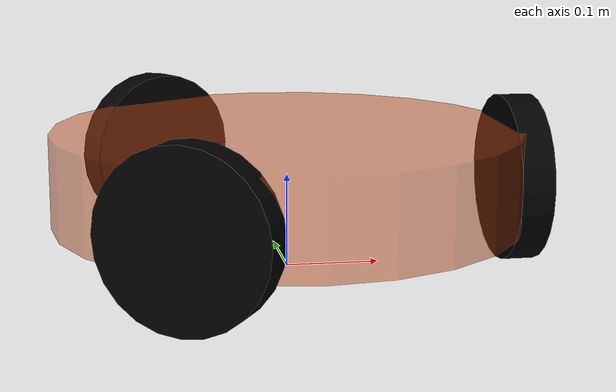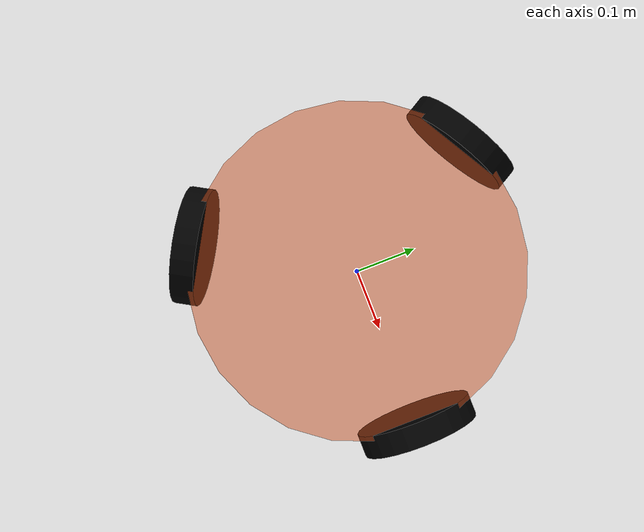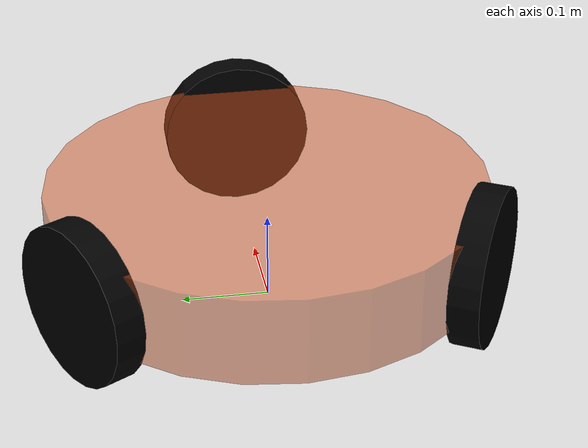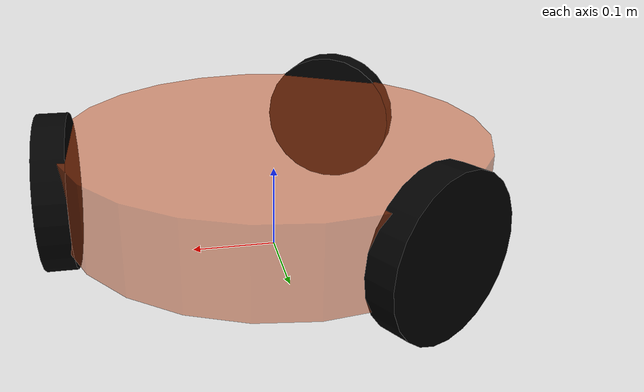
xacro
<robot name="mycar" xmlns:xacro="http://wiki.ros.org/xacro">
    <!-- 设置 base_footprint  -->
    <link name="base_footprint">
    </link>

    <!-- 添加底盘 -->
    <link name="base_link">
        <visual>
            <geometry>
                <cylinder radius="0.25" length="0.10" />
            </geometry>
            <origin xyz="0 0 0" rpy="0 0 0" />
            <material name="yellow">
                <color rgba="0.8 0.3 0.1 0.5" />
            </material>
        </visual>
    </link>

    <joint name="base_link2base_footprint" type="fixed">
        <parent link="base_footprint" />
        <child link="base_link"/>
        <origin xyz="0 0 0.1" />
    </joint>

    <!-- 添加驱动轮 -->
    <link name="left_wheel">
        <visual>
            <geometry>
                <cylinder radius="0.09" length="0.035" />
            </geometry>
            <origin xyz="0 0 0" rpy="1.5708 0 0.52360" />
            <material name="black">
                <color rgba="0.0 0.0 0.0 1.0" />
            </material>
        </visual>

    </link>

    <joint name="left_wheel_joint" type="continuous">
        <parent link="base_link" />
        <child link="left_wheel" />
        <origin xyz="-0.125 0.21650 -0.01" />
        <axis xyz="-0.125 0.21650 0" />
    </joint>

    <link name="right_wheel">
        <visual>
            <geometry>
                <cylinder radius="0.09" length="0.035" />
            </geometry>
            <origin xyz="0 0 0" rpy="1.5708 0 -0.52360" />
            <material name="black">
                <color rgba="0.0 0.0 0.0 1.0" />
            </material>
        </visual>

    </link>

    <joint name="right_wheel_joint" type="continuous">
        <parent link="base_link" />
        <child link="right_wheel" />
        <origin xyz="-0.125 -0.21650 -0.01" />
        <axis xyz="-0.125 -0.21650 0" />
    </joint>

    <link name="front_wheel">
        <visual>
            <geometry>
                <cylinder radius="0.09" length="0.035" />
            </geometry>
            <origin xyz="0 0 0" rpy="1.5708 0 1.5708" />
            <material name="black">
                <color rgba="0.0 0.0 0.0 1.0" />
            </material>
        </visual>

    </link>

    <joint name="front_wheel_joint" type="continuous">
        <parent link="base_link" />
        <child link="front_wheel" />
        <origin xyz="0.25 0 -0.01" />
        <axis xyz="0.25 0 0" />
    </joint>
    <xacro:macro name="wheel_transmission" params="prefix mechanical_reduction">
      <transmission name="${prefix}_wheel">
          <type>transmission_interface/SimpleTransmission</type>
          <actuator name="${prefix}_wheel_motor">
              <hardwareInterface>hardware_interface/EffortJointInterface</hardwareInterface>
              <mechanicalReduction>${mechanical_reduction}</mechanicalReduction>
          </actuator>
          <joint name="${prefix}_wheel_joint">
              <hardwareInterface>hardware_interface/EffortJointInterface</hardwareInterface>
          </joint>
      </transmission>
    </xacro:macro>

    <xacro:wheel_transmission prefix="right" mechanical_reduction="19.2032"/>
    <xacro:wheel_transmission prefix="left" mechanical_reduction="19.2032"/>
    <xacro:wheel_transmission prefix="front" mechanical_reduction="19.2032"/>
</robot>
